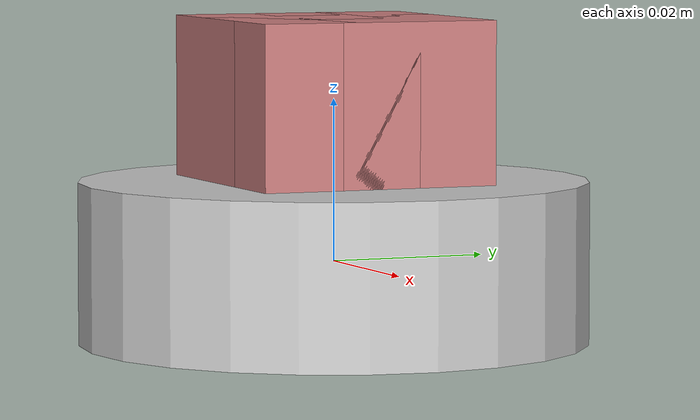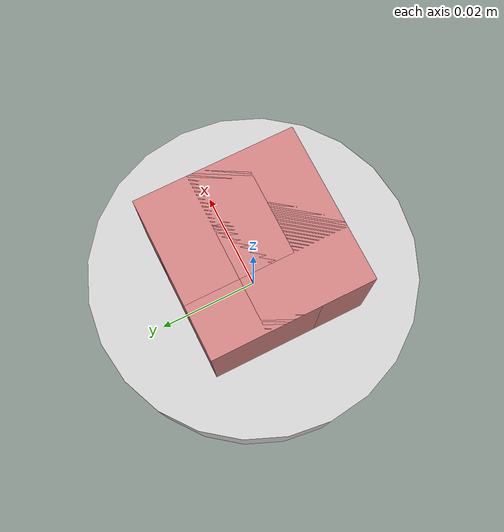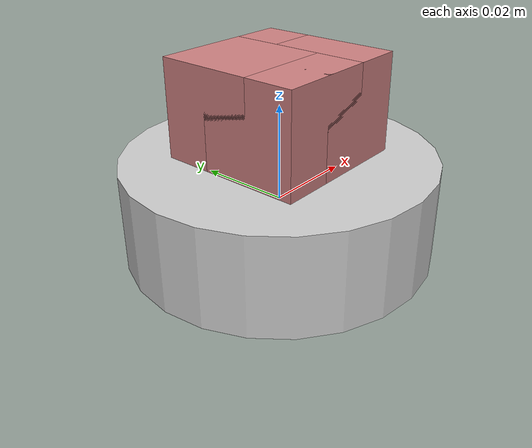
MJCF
<mujoco model="suction">
  <!--
  simple suction model
  -->
  <compiler angle="radian" meshdir="assets" autolimits="true"/>

  <default>
    <default class="mechanical">
      <geom rgba=".5 .5 .8 1"/>
      <tendon rgba=".5 .5 .8 1"/>
    </default>
    <default class="active_adhesion">
      <geom rgba=".8 .5 .5 1" margin="0.01" gap="0.01"/>
    </default>
  </default>

  <worldbody>

    <body name="base" pos="0 0 0">
      <geom name="suction_base" type="cylinder" size="0.0315 0.01" rgba="0.8 0.8 0.8 1"/>

      <body name="suction_tip" pos="0 0 0.02" childclass="active_adhesion">
            <site name="force_sensor" group="3"/>
            <site name="suction_site" pos="0 0 0.02" quat=" 0 0.707 0.707 0 " group="5"/>
          <geom size=".01 .01 .01" pos="0.005 0.005 0" type="box" solref="0.02 1" solimp="0.8 0.9 0.001 0.5 2" density="500" />
          <geom size=".01 .01 .01" pos="0.005 -.005 0" type="box" solref="0.02 1" solimp="0.8 0.9 0.001 0.5 2" density="500"/>
          <geom size=".01 .01 .01" pos="-.005 0.005 0" type="box" solref="0.02 1" solimp="0.8 0.9 0.001 0.5 2" density="500"/>
          <geom size=".01 .01 .01" pos="-.005 -.005 0" type="box" solref="0.02 1" solimp="0.8 0.9 0.001 0.5 2" density="500"/>

      </body>

    </body>

  </worldbody>

  <actuator>
    <adhesion name="suction_actuator" body="suction_tip" ctrlrange="0 1" gain="50"/>
  </actuator>

  <sensor>
    <force site="force_sensor"/>
  </sensor>
</mujoco>
